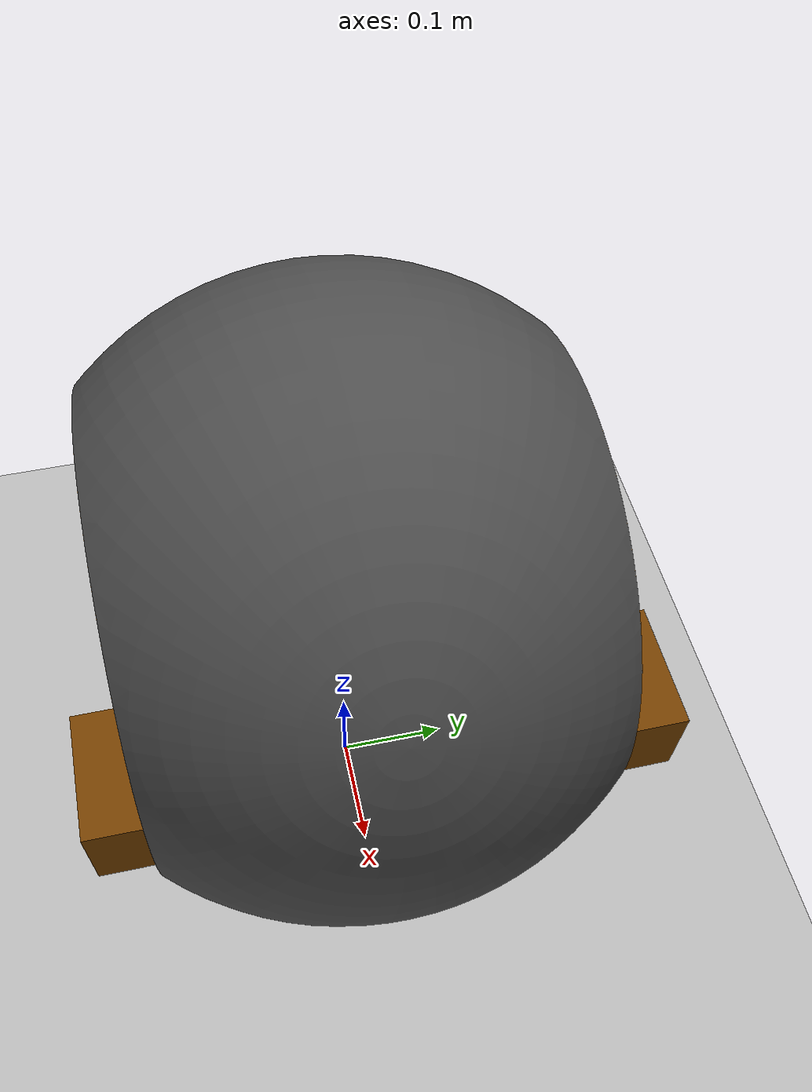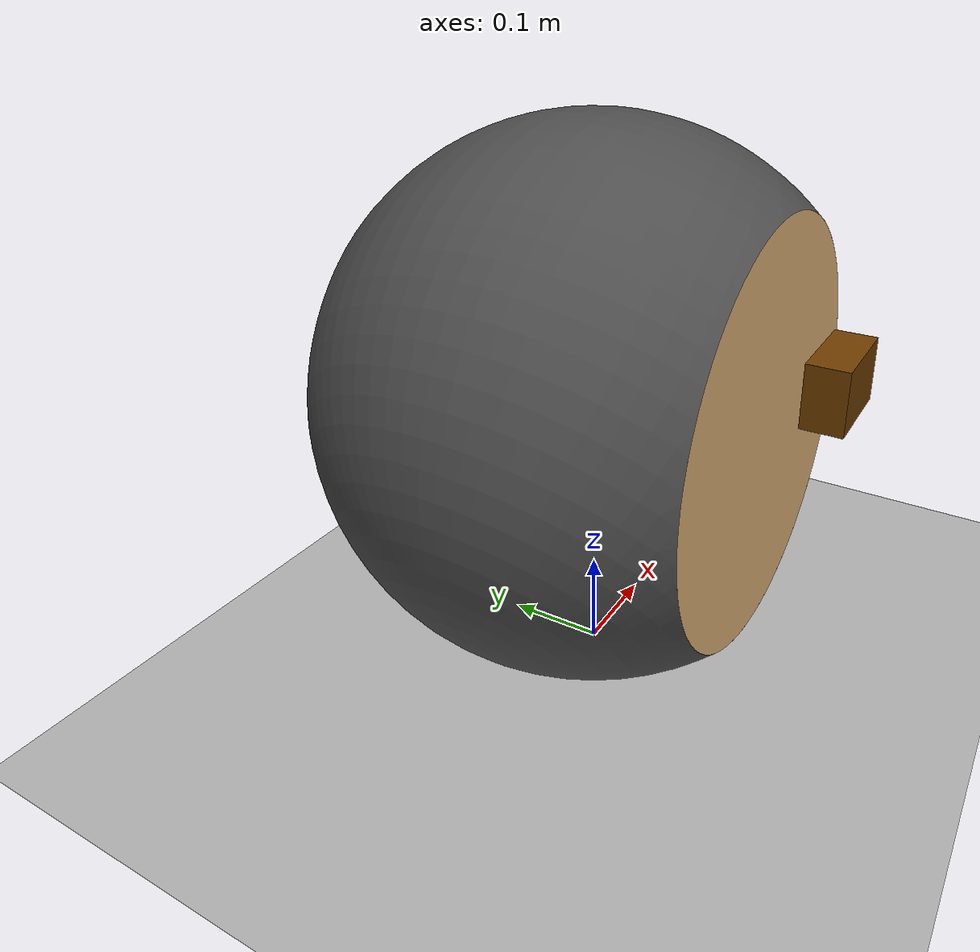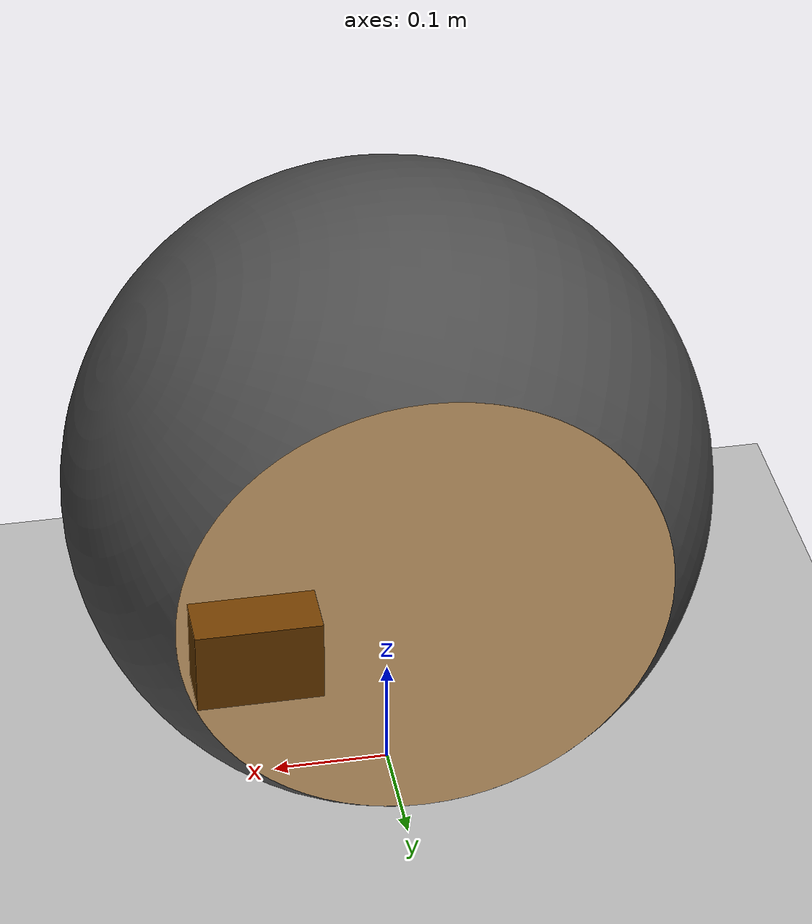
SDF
<?xml version="1.0"?>
<sdf version="1.7">
  <world name="default">
    <plugin filename="ignition-gazebo-physics-system" name="ignition::gazebo::systems::Physics"/>
    <plugin filename="ignition-gazebo-user-commands-system" name="ignition::gazebo::systems::UserCommands"/>
    <plugin filename="ignition-gazebo-scene-broadcaster-system" name="ignition::gazebo::systems::SceneBroadcaster"/>

    <plugin filename="ignition-gazebo-sensors-system" name="ignition::gazebo::systems::Sensors">
    <plugin name="ignition::gazebo::systems::Imu"
          filename="ignition-gazebo-imu-system"/>
      <render_engine>ogre2</render_engine>
    </plugin>
    <plugin filename="ignition-gazebo-imu-system" name="ignition::gazebo::systems::Imu"/>
    <!-- simple light -->
    <light name="sun" type="directional">
      <pose>0 0 10 0 0 0</pose>
      <cast_shadows>true</cast_shadows>
      <diffuse>1 1 1 1</diffuse>
      <specular>0.1 0.1 0.1 1</specular>
      <attenuation>
        <range>100</range>
        <constant>0.9</constant>
        <linear>0.01</linear>
        <quadratic>0.001</quadratic>
      </attenuation>
      <direction>-0.5 0.5 -1</direction>
    </light>

    <!-- simple ground plane -->
    <model name="ground_plane">
      <static>true</static>
      <link name="link">
        <collision name="collision">
          <geometry>
            <plane>
              <normal>0 0 1</normal>
              <size>100 100</size>
            </plane>
          </geometry>
          <surface>
            <friction>
              <ode><mu>1.0</mu><mu2>1.0</mu2></ode>
            </friction>
          </surface>
        </collision>
        <visual name="visual">
          <geometry>
            <plane>
              <normal>0 0 1</normal>
              <size>100 100</size>
            </plane>
          </geometry>
          <material>
            <ambient>0.7 0.7 0.7 1</ambient>
            <diffuse>0.7 0.7 0.7 1</diffuse>
          </material>
        </visual>
      </link>
    </model>

    <!-- spherical robot model -->
    <include>
      <uri>model://spherical_robot</uri>
      <name>spherical_robot</name>
      <pose>0 0 0.3 0 0 0</pose>
    </include>

  </world>
</sdf>

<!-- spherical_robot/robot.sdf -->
<sdf version="1.7">
  <model name="spherical_robot">

    <link name="frame">
      <inertial>
        <pose>0.000618157 2.38843e-10 -0.00880988 0 0 0</pose>
        <mass>9.54386</mass>
        <inertia>
          <ixx>0.243912</ixx>
          <ixy>1.40911e-12</ixy>
          <ixz>-5.19748e-05</ixz>
          <iyy>0.138617</iyy>
          <iyz>-2.71676e-11</iyz>
          <izz>0.239654</izz>
        </inertia>
      </inertial>
      <pose>0 0 0 0 -0 0</pose>

      <visual name="motor_visual_mesh_1">
        <pose relative_to="frame">-3.66259e-17 0.045 -0.135 3.14159 -2.65113e-16 1.5708</pose>
        <geometry>
          <mesh>
            <uri>model://spherical_robot/assets/motor.stl</uri>
          </mesh>
        </geometry>
        <material>
          <ambient>0.498039 0.498039 0.498039 1</ambient>
          <diffuse>0.498039 0.498039 0.498039 1</diffuse>
          <specular>0.1 0.1 0.1 1</specular>
          <emissive>0 0 0 0</emissive>
        </material>
      </visual>
      <collision name="motor_collision_mesh_2">
        <pose relative_to="frame">-3.66259e-17 0.045 -0.135 3.14159 -2.65113e-16 1.5708</pose>
        <geometry>
          <mesh>
            <uri>model://spherical_robot/assets/motor.stl</uri>
          </mesh>
        </geometry>
      </collision>

      <visual name="frame_visual_mesh_1">
        <pose relative_to="frame">1.27895e-34 -1.52808e-18 -1.10117e-33 3.14159 -1.05471e-15 -1.47911e-31</pose>
        <geometry>
          <mesh>
            <uri>model://spherical_robot/assets/frame.stl</uri>
          </mesh>
        </geometry>
        <material>
          <ambient>0.917647 0.72549 0.490196 1</ambient>
          <diffuse>0.917647 0.72549 0.490196 1</diffuse>
          <specular>0.1 0.1 0.1 1</specular>
          <emissive>0 0 0 0</emissive>
        </material>
      </visual>
      <collision name="frame_collision_mesh_2">
        <pose relative_to="frame">1.27895e-34 -1.52808e-18 -1.10117e-33 3.14159 -1.05471e-15 -1.47911e-31</pose>
        <geometry>
          <mesh>
            <uri>model://spherical_robot/assets/frame.stl</uri>
          </mesh>
        </geometry>
      </collision>

      <visual name="camera_right_visual_mesh_1">
        <pose relative_to="frame">0.28 6.5056e-15 3.05311e-16 -3.14159 1.27676e-15 3.14159</pose>
        <geometry>
          <mesh>
            <uri>model://spherical_robot/assets/camera_right.stl</uri>
          </mesh>
        </geometry>
        <material>
          <ambient>0.447059 0.243137 0 1</ambient>
          <diffuse>0.447059 0.243137 0 1</diffuse>
          <specular>0.1 0.1 0.1 1</specular>
          <emissive>0 0 0 0</emissive>
        </material>
      </visual>
      <collision name="camera_right_collision_mesh_2">
        <pose relative_to="frame">0.28 6.5056e-15 3.05311e-16 -3.14159 1.27676e-15 3.14159</pose>
        <geometry>
          <mesh>
            <uri>model://spherical_robot/assets/camera_right.stl</uri>
          </mesh>
        </geometry>
      </collision>

      <sensor name="camera_right" type="camera">
        <pose relative_to="frame">0.19 -0.21 0 0 0 -0.0872665</pose>
        <update_rate>30</update_rate>
        <always_on>true</always_on>
        <visualize>false</visualize>
        <topic>/spherical_robot/camera_right/image</topic>
        <gz_frame_id>spherical_robot/camera_right_optical_frame</gz_frame_id>
        <camera>
          <horizontal_fov>1.047</horizontal_fov>
          <image>
            <width>1280</width>
            <height>720</height>
            <format>R8G8B8</format>
          </image>
          <clip>
            <near>0.05</near>
            <far>50.0</far>
          </clip>
          <distortion>
            <k1>0.0</k1>
            <k2>0.0</k2>
            <k3>0.0</k3>
            <p1>0.0</p1>
            <p2>0.0</p2>
          </distortion>
          <info_topic>/spherical_robot/camera_right/camera_info</info_topic>
        </camera>
      </sensor>

      <visual name="camera_left_visual_mesh_1">
        <pose relative_to="frame">0.28 -2.4932e-15 3.05311e-16 -3.14159 1.4988e-15 3.14159</pose>
        <geometry>
          <mesh>
            <uri>model://spherical_robot/assets/camera_left.stl</uri>
          </mesh>
        </geometry>
        <material>
          <ambient>0.447059 0.243137 0 1</ambient>
          <diffuse>0.447059 0.243137 0 1</diffuse>
          <specular>0.1 0.1 0.1 1</specular>
          <emissive>0 0 0 0</emissive>
        </material>
      </visual>
      <collision name="camera_left_collision_mesh_2">
        <pose relative_to="frame">0.28 -2.4932e-15 3.05311e-16 -3.14159 1.4988e-15 3.14159</pose>
        <geometry>
          <mesh>
            <uri>model://spherical_robot/assets/camera_left.stl</uri>
          </mesh>
        </geometry>
      </collision>

      <sensor name="camera_left" type="camera">
        <pose relative_to="frame">0.19 0.21 0 0 0 0.0872665</pose>
        <update_rate>30</update_rate>
        <always_on>true</always_on>
        <visualize>false</visualize>
        <topic>/spherical_robot/camera_left/image</topic>
        <gz_frame_id>spherical_robot/camera_left_optical_frame</gz_frame_id>
        <camera>
          <horizontal_fov>1.047</horizontal_fov>
          <image>
            <width>1280</width>
            <height>720</height>
            <format>R8G8B8</format>
          </image>
          <clip>
            <near>0.05</near>
            <far>50.0</far>
          </clip>
          <distortion>
            <k1>0.0</k1>
            <k2>0.0</k2>
            <k3>0.0</k3>
            <p1>0.0</p1>
            <p2>0.0</p2>
          </distortion>
          <info_topic>/spherical_robot/camera_left/camera_info</info_topic>
        </camera>
      </sensor>

      <visual name="motor_2_visual_mesh_1">
        <pose relative_to="frame">-2.07043e-17 -0.045 -0.135 3.14159 -5.10804e-17 -1.5708</pose>
        <geometry>
          <mesh>
            <uri>model://spherical_robot/assets/motor.stl</uri>
          </mesh>
        </geometry>
        <material>
          <ambient>0.498039 0.498039 0.498039 1</ambient>
          <diffuse>0.498039 0.498039 0.498039 1</diffuse>
          <specular>0.1 0.1 0.1 1</specular>
          <emissive>0 0 0 0</emissive>
        </material>
      </visual>
      <collision name="motor_2_collision_mesh_2">
        <pose relative_to="frame">-2.07043e-17 -0.045 -0.135 3.14159 -5.10804e-17 -1.5708</pose>
        <geometry>
          <mesh>
            <uri>model://spherical_robot/assets/motor.stl</uri>
          </mesh>
        </geometry>
      </collision>

      <sensor name="frame_imu" type="imu">
        <pose relative_to="frame">0 0 0.05 0 0 0</pose>
        <update_rate>500</update_rate>
        <always_on>true</always_on>

        <!-- Make the transport topics simple and predictable -->
        <topic>/spherical_robot/frame_imu</topic>

        <!-- Optional but recommended so the ROS header.frame_id is useful -->
        <gz_frame_id>spherical_robot/frame</gz_frame_id>

        <imu>
          <!-- Be explicit: publish orientation -->
          <enable_orientation>true</enable_orientation>

          <!-- Orient the IMU output in WORLD frame (no extra rotation) -->
          <orientation_reference_frame>
            <localization>CUSTOM</localization>
            <parent_frame>world</parent_frame>
            <custom_rpy>0 0 0</custom_rpy>
          </orientation_reference_frame>

          <angular_velocity>
            <noise type="gaussian">
              <mean>0.0</mean>
              <stddev>0.001</stddev>
              <bias_mean>0.0</bias_mean>
              <bias_stddev>0.0001</bias_stddev>
              <dynamic_bias_stddev>0.0001</dynamic_bias_stddev>
              <dynamic_bias_correlation_time>10.0</dynamic_bias_correlation_time>
            </noise>
          </angular_velocity>
          <linear_acceleration>
            <noise type="gaussian">
              <mean>0.0</mean>
              <stddev>0.05</stddev>
              <bias_mean>0.0</bias_mean>
              <bias_stddev>0.01</bias_stddev>
              <dynamic_bias_stddev>0.01</dynamic_bias_stddev>
              <dynamic_bias_correlation_time>10.0</dynamic_bias_correlation_time>
            </noise>
          </linear_acceleration>
        </imu>
      </sensor>
    </link>

    <link name="inertial_wheel">
      <inertial>
        <pose>1.04194e-17 2.84745e-17 0.0154962 0 0 0</pose>
        <mass>5.42378</mass>
        <inertia>
          <ixx>0.0270726</ixx>
          <ixy>0</ixy>
          <ixz>3.5079e-33</ixz>
          <iyy>0.0270726</iyy>
          <iyz>0</iyz>
          <izz>0.0530374</izz>
        </inertia>
      </inertial>
      <pose relative_to="rw_x">0 0 0 0 -0 0</pose>

      <visual name="inertial_wheel_visual_mesh_1">
        <pose relative_to="inertial_wheel">0 -3.06162e-19 0.0155 -1.5708 -1.28668e-31 0</pose>
        <geometry>
          <mesh>
            <uri>model://spherical_robot/assets/inertial_wheel.stl</uri>
          </mesh>
        </geometry>
        <material>
          <ambient>0.654902 0.823529 0.576471 1</ambient>
          <diffuse>0.654902 0.823529 0.576471 1</diffuse>
          <specular>0.1 0.1 0.1 1</specular>
          <emissive>0 0 0 0</emissive>
        </material>
      </visual>
      <collision name="inertial_wheel_collision_mesh_2">
        <pose relative_to="inertial_wheel">0 -3.06162e-19 0.0155 -1.5708 -1.28668e-31 0</pose>
        <geometry>
          <mesh>
            <uri>model://spherical_robot/assets/inertial_wheel.stl</uri>
          </mesh>
        </geometry>
      </collision>
    </link>

    <joint name="rw_x" type="revolute">
      <pose relative_to="frame">-0.155 6.93889e-18 -6.24815e-17 -1.5708 7.45191e-07 -1.5708</pose>
      <parent>frame</parent>
      <child>inertial_wheel</child>
      <axis>
        <xyz>0 0 1</xyz>
        <limit>
          <effort>50</effort>
          <velocity>5000</velocity>
        </limit>
        <dynamics>
          <friction>0.01</friction>
          <damping>0.005</damping>
        </dynamics>
      </axis>
    </joint>

    <link name="inertial_wheel_2">
      <inertial>
        <pose>1.04194e-17 2.84745e-17 0.0154962 0 0 0</pose>
        <mass>5.42378</mass>
        <inertia>
          <ixx>0.0270726</ixx>
          <ixy>-7.51415e-19</ixy>
          <ixz>-3.26868e-34</ixz>
          <iyy>0.0270726</iyy>
          <iyz>8.1717e-35</iyz>
          <izz>0.0530374</izz>
        </inertia>
      </inertial>
      <pose relative_to="rw_y">0 0 0 0 -0 0</pose>

      <visual name="inertial_wheel_2_visual_mesh_1">
        <pose relative_to="inertial_wheel_2">7.70372e-34 -3.06162e-19 0.0155 -1.5708 -0 -2.77556e-17</pose>
        <geometry>
          <mesh>
            <uri>model://spherical_robot/assets/inertial_wheel.stl</uri>
          </mesh>
        </geometry>
        <material>
          <ambient>0.654902 0.823529 0.576471 1</ambient>
          <diffuse>0.654902 0.823529 0.576471 1</diffuse>
          <specular>0.1 0.1 0.1 1</specular>
          <emissive>0 0 0 0</emissive>
        </material>
      </visual>
      <collision name="inertial_wheel_2_collision_mesh_2">
        <pose relative_to="inertial_wheel_2">7.70372e-34 -3.06162e-19 0.0155 -1.5708 -0 -2.77556e-17</pose>
        <geometry>
          <mesh>
            <uri>model://spherical_robot/assets/inertial_wheel.stl</uri>
          </mesh>
        </geometry>
      </collision>
    </link>

    <joint name="rw_y" type="revolute">
      <pose relative_to="frame">-1.64113e-22 0.155 1.90737e-18 1.5708 -1.38032 -1.90153e-16</pose>
      <parent>frame</parent>
      <child>inertial_wheel_2</child>
      <axis>
        <xyz>0 0 1</xyz>
        <limit>
          <effort>50</effort>
          <velocity>5000</velocity>
        </limit>
        <dynamics>
          <friction>0.01</friction>
          <damping>0.005</damping>
        </dynamics>
      </axis>
    </joint>

    <link name="inertial_wheel_3">
      <inertial>
        <pose>1.02035e-17 2.68386e-17 0.0154962 0 0 0</pose>
        <mass>5.42378</mass>
        <inertia>
          <ixx>0.0270726</ixx>
          <ixy>1.98531e-18</ixy>
          <ixz>-1.68233e-18</ixz>
          <iyy>0.0270726</iyy>
          <iyz>5.90871e-18</iyz>
          <izz>0.0530374</izz>
        </inertia>
      </inertial>
      <pose relative_to="rw_z">0 0 0 0 -0 0</pose>

      <visual name="inertial_wheel_3_visual_mesh_1">
        <pose relative_to="inertial_wheel_3">-2.15951e-19 -1.94237e-18 0.0155 -1.5708 3.48472e-17 -7.45191e-07</pose>
        <geometry>
          <mesh>
            <uri>model://spherical_robot/assets/inertial_wheel.stl</uri>
          </mesh>
        </geometry>
        <material>
          <ambient>0.654902 0.823529 0.576471 1</ambient>
          <diffuse>0.654902 0.823529 0.576471 1</diffuse>
          <specular>0.1 0.1 0.1 1</specular>
          <emissive>0 0 0 0</emissive>
        </material>
      </visual>
      <collision name="inertial_wheel_3_collision_mesh_2">
        <pose relative_to="inertial_wheel_3">-2.15951e-19 -1.94237e-18 0.0155 -1.5708 3.48472e-17 -7.45191e-07</pose>
        <geometry>
          <mesh>
            <uri>model://spherical_robot/assets/inertial_wheel.stl</uri>
          </mesh>
        </geometry>
      </collision>
    </link>

    <joint name="rw_z" type="revolute">
      <pose relative_to="frame">0.155 5.67522e-56 6.18692e-17 1.5708 3.66644e-17 -1.5708</pose>
      <parent>frame</parent>
      <child>inertial_wheel_3</child>
      <axis>
        <xyz>0 0 1</xyz>
        <limit>
          <effort>50</effort>
          <velocity>5000</velocity>
        </limit>
        <dynamics>
          <friction>0.01</friction>
          <damping>0.005</damping>
        </dynamics>
      </axis>
    </joint>

    <link name="inertial_wheel_4">
      <inertial>
        <pose>1.04194e-17 2.84745e-17 0.0154962 0 0 0</pose>
        <mass>5.42378</mass>
        <inertia>
          <ixx>0.0270726</ixx>
          <ixy>4.81482e-34</ixy>
          <ixz>-1.66848e-34</ixz>
          <iyy>0.0270726</iyy>
          <iyz>4.00051e-35</iyz>
          <izz>0.0530374</izz>
        </inertia>
      </inertial>
      <pose relative_to="rw_w">0 0 0 0 -0 0</pose>

      <visual name="inertial_wheel_4_visual_mesh_1">
        <pose relative_to="inertial_wheel_4">0 -3.06162e-19 0.0155 -1.5708 6.16298e-33 2.77556e-17</pose>
        <geometry>
          <mesh>
            <uri>model://spherical_robot/assets/inertial_wheel.stl</uri>
          </mesh>
        </geometry>
        <material>
          <ambient>0.654902 0.823529 0.576471 1</ambient>
          <diffuse>0.654902 0.823529 0.576471 1</diffuse>
          <specular>0.1 0.1 0.1 1</specular>
          <emissive>0 0 0 0</emissive>
        </material>
      </visual>
      <collision name="inertial_wheel_4_collision_mesh_2">
        <pose relative_to="inertial_wheel_4">0 -3.06162e-19 0.0155 -1.5708 6.16298e-33 2.77556e-17</pose>
        <geometry>
          <mesh>
            <uri>model://spherical_robot/assets/inertial_wheel.stl</uri>
          </mesh>
        </geometry>
      </collision>
    </link>

    <joint name="rw_w" type="revolute">
      <pose relative_to="frame">1.64113e-22 -0.155 9.49754e-19 -1.5708 -1.38032 -1.90143e-16</pose>
      <parent>frame</parent>
      <child>inertial_wheel_4</child>
      <axis>
        <xyz>0 0 1</xyz>
        <limit>
          <effort>50</effort>
          <velocity>5000</velocity>
        </limit>
        <dynamics>
          <friction>0.01</friction>
          <damping>0.005</damping>
        </dynamics>
      </axis>
    </joint>

    <link name="outer">
      <inertial>
        <pose>-1.21378e-06 1.77607e-06 0.18028 0 0 0</pose>
        <mass>21.3538</mass>
        <inertia>
          <ixx>0.695158</ixx>
          <ixy>2.81968e-05</ixy>
          <ixz>-6.47805e-16</ixz>
          <iyy>0.695136</iyy>
          <iyz>6.36409e-17</iyz>
          <izz>1.03355</izz>
        </inertia>
      </inertial>
      <pose relative_to="outer_2">0 0 0 0 -0 0</pose>

      <visual name="internal_gear_visual_mesh_1">
        <pose relative_to="outer">0.00392548 -0.00574396 0.264747 -2.1703 1.5708 0</pose>
        <geometry>
          <mesh>
            <uri>model://spherical_robot/assets/internal_gear.stl</uri>
          </mesh>
        </geometry>
        <material>
          <ambient>0.796078 0.823529 0.937255 1</ambient>
          <diffuse>0.796078 0.823529 0.937255 1</diffuse>
          <specular>0.1 0.1 0.1 1</specular>
          <emissive>0 0 0 0</emissive>
        </material>
      </visual>
      <collision name="internal_gear_collision_mesh_2">
        <pose relative_to="outer">0.00392548 -0.00574396 0.264747 -2.1703 1.5708 0</pose>
        <geometry>
          <mesh>
            <uri>model://spherical_robot/assets/internal_gear.stl</uri>
          </mesh>
        </geometry>
      </collision>

      <visual name="internal_gear_2_visual_mesh_1">
        <pose relative_to="outer">0.00574396 0.00392548 0.0596262 2.54209 1.5708 0</pose>
        <geometry>
          <mesh>
            <uri>model://spherical_robot/assets/internal_gear.stl</uri>
          </mesh>
        </geometry>
        <material>
          <ambient>0.796078 0.823529 0.937255 1</ambient>
          <diffuse>0.796078 0.823529 0.937255 1</diffuse>
          <specular>0.1 0.1 0.1 1</specular>
          <emissive>0 0 0 0</emissive>
        </material>
      </visual>
      <collision name="internal_gear_2_collision_mesh_2">
        <pose relative_to="outer">0.00574396 0.00392548 0.0596262 2.54209 1.5708 0</pose>
        <geometry>
          <mesh>
            <uri>model://spherical_robot/assets/internal_gear.stl</uri>
          </mesh>
        </geometry>
      </collision>

      <visual name="outer_visual_mesh_1">
        <pose relative_to="outer">-5.10971e-17 1.46138e-16 0.18028 -1.5708 -6.72614e-16 -0.971291</pose>
        <geometry>
          <mesh>
            <uri>model://spherical_robot/assets/outer.stl</uri>
          </mesh>
        </geometry>
        <material>
          <ambient>0.301961 0.301961 0.301961 1</ambient>
          <diffuse>0.301961 0.301961 0.301961 1</diffuse>
          <specular>0.1 0.1 0.1 1</specular>
          <emissive>0 0 0 0</emissive>
        </material>
      </visual>
      <collision name="outer_collision_mesh_2">
        <pose relative_to="outer">-5.10971e-17 1.46138e-16 0.18028 -1.5708 -6.72614e-16 -0.971291</pose>
        <geometry>
          <mesh>
            <uri>model://spherical_robot/assets/outer.stl</uri>
          </mesh>
        </geometry>
        <surface>
          <contact>
            <ode>
              <soft_cfm>0.0018</soft_cfm>
              <soft_erp>0.3</soft_erp>
              <kp>170000</kp>
              <kd>400</kd>
            </ode>
          </contact>
          <friction>
            <ode>
              <mu>1.0</mu>
              <mu2>1.0</mu2>
              <fdir1>1 0 0</fdir1>
              <slip1>0.02</slip1>
              <slip2>0.02</slip2>
            </ode>
            <torsional>
              <ode>
                <coefficient>0.5</coefficient>
                <patch_radius>0.03</patch_radius>
                <surface_radius>0.05</surface_radius>
                <use_patch_radius>true</use_patch_radius>
                <slip>0.02</slip>
              </ode>
            </torsional>
          </friction>
          <bounce>
            <restitution_coefficient>0.02</restitution_coefficient>
            <threshold>50</threshold>
          </bounce>
        </surface>
      </collision>
    </link>

    <joint name="outer_2" type="revolute">
      <pose relative_to="frame">9.94916e-17 0.180277 -1.04195e-17 1.5708 -3.19497e-16 3.66144e-55</pose>
      <parent>frame</parent>
      <child>outer</child>
      <axis>
        <xyz>0 0 1</xyz>
        <limit>
          <effort>30</effort>
          <velocity>250</velocity>
        </limit>
        <dynamics>
          <friction>0.005</friction>
          <damping>0.01</damping>
        </dynamics>
      </axis>
        </joint>
    <ros2_control name="GazeboSimSystem" type="system">
      <hardware>
        <plugin>gz_ros2_control/GazeboSimSystem</plugin>
      </hardware>
      <joint name="rw_x">
        <command_interface name="effort">
          <param name="min">-50</param>
          <param name="max">50</param>
        </command_interface>
        <state_interface name="position" />
        <state_interface name="velocity" />
        </joint>
      <joint name="rw_y">
        <command_interface name="effort">
          <param name="min">-50</param>
          <param name="max">50</param>
        </command_interface>
        <state_interface name="position" />
        <state_interface name="velocity" />
        </joint>
      <joint name="rw_z">
        <command_interface name="effort">
          <param name="min">-50</param>
          <param name="max">50</param>
        </command_interface>
        <state_interface name="position" />
        <state_interface name="velocity" />
        </joint>
      <joint name="rw_w">
        <command_interface name="effort">
          <param name="min">-50</param>
          <param name="max">50</param>
        </command_interface>
        <state_interface name="position" />
        <state_interface name="velocity" />
        </joint>
      <joint name="outer_2">
        <command_interface name="velocity">
          <param name="min">-250</param>
          <param name="max">250</param>
        </command_interface>
        <state_interface name="position" />
        <state_interface name="velocity" />
        </joint>
    </ros2_control>
    <plugin filename="libgz_ros2_control-system.so" name="gz_ros2_control::GazeboSimROS2ControlPlugin">
      <parameters>/home/gontary/ros_ws/src/spherical_robot_control/config/spherical_robot_control.yaml</parameters>
      <ros>
        <namespace>/spherical_robot</namespace>
      </ros>
    </plugin>
  </model>
</sdf>
